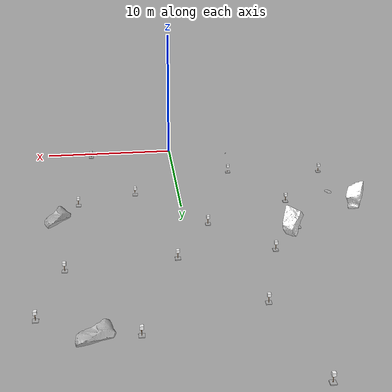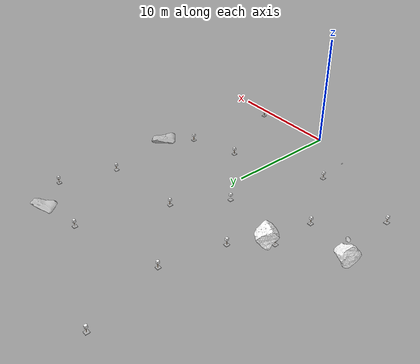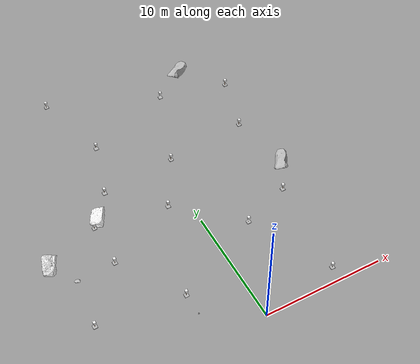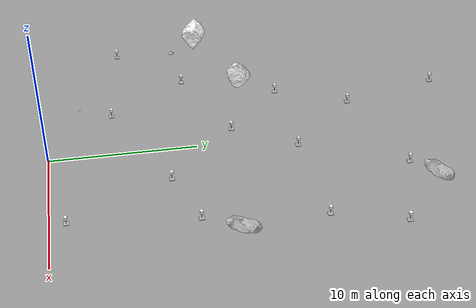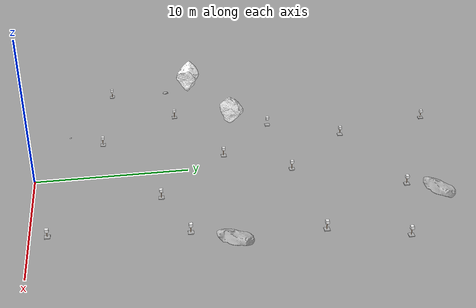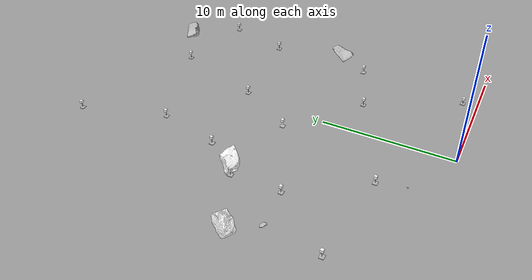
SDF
<sdf version="1.7">
 <world name="rover_world">
  <gravity>0 0 -9.81</gravity>
  <physics name="dart_physics" type="ignored">
   <max_step_size>0.003</max_step_size>
   <real_time_update_rate>333</real_time_update_rate>
   <real_time_factor>1.0</real_time_factor>
  </physics>
  <plugin filename="ignition-gazebo-physics-system" name="ignition::gazebo::systems::Physics"/>
  <plugin filename="ignition-gazebo-user-commands-system" name="ignition::gazebo::systems::UserCommands"/>
  <plugin filename="ignition-gazebo-scene-broadcaster-system" name="ignition::gazebo::systems::SceneBroadcaster"/>
  <plugin filename="ignition-gazebo-contact-system" name="ignition::gazebo::systems::Contact"/>
  <plugin filename="ignition-gazebo-pose-publisher-system" name="ignition::gazebo::systems::PosePublisher">
   <publish_link_pose>false</publish_link_pose>
   <publish_nested_model_pose>false</publish_nested_model_pose>
   <use_pose_vector_msg>true</use_pose_vector_msg>
   <update_frequency>50</update_frequency>
  </plugin>
  <plugin filename="ignition-gazebo-sensors-system" name="ignition::gazebo::systems::Sensors">
   <render_engine>ogre2</render_engine>
  </plugin>
  <plugin filename="ignition-gazebo-imu-system" name="ignition::gazebo::systems::Imu"/>
  <plugin filename="ignition-gazebo-magnetometer-system" name="ignition::gazebo::systems::Magnetometer"/>
  <scene>
   <ambient>0.95 0.95 0.95 1</ambient>
   <background>0.70 0.70 0.70 1</background>
   <shadows>false</shadows>
  </scene>
  <light type="directional" name="sun">
   <cast_shadows>false</cast_shadows>
   <pose>0 0 30 0 0 0</pose>
   <diffuse>0.9 0.85 0.8 1</diffuse>
   <specular>0.2 0.2 0.2 1</specular>
   <direction>-0.3 0.3 -0.9</direction>
  </light>
  <include>
   <name>Rock_1</name>
   <pose>-4.4550 2.2485 0.6012 0.0000 0.0000 1.2871</pose>
   <uri>model://rock_5</uri>
  </include>
  <include>
   <name>Rock_3</name>
   <pose>-12.7886 11.4865 0.8108 0.0000 0.0000 -1.9916</pose>
   <uri>model://rock_1</uri>
  </include>
  <include>
   <name>Rock_5</name>
   <pose>8.6583 11.9739 0.3344 0.0000 0.0000 -2.0026</pose>
   <uri>model://rock_4</uri>
  </include>
  <include>
   <name>Rock_6</name>
   <pose>-6.7548 13.5827 0.4504 0.0000 0.0000 1.0725</pose>
   <uri>model://rock_1</uri>
  </include>
  <include>
   <name>Rock_8</name>
   <pose>-10.9835 9.3268 0.3040 0.0000 0.0000 2.3352</pose>
   <uri>model://rock_8</uri>
  </include>
  <include>
   <name>Rock_12</name>
   <pose>5.9745 25.2183 0.7205 0.0000 0.0000 -2.4954</pose>
   <uri>model://rock_4</uri>
  </include>
  <model name="ArUco_51">
   <static>true</static>
   <pose>3.1830 8.0120 0.0848 0.0000 0.0000 0.0000</pose>
   <include><uri>model://aruco_1</uri></include>
  </model>
  <model name="ArUco_52">
   <static>true</static>
   <pose>7.2690 9.4820 0.1802 0.0000 0.0000 0.0000</pose>
   <include><uri>model://aruco_2</uri></include>
  </model>
  <model name="ArUco_53">
   <static>true</static>
   <pose>7.8780 17.5830 -0.0338 0.0000 0.0000 0.0000</pose>
   <include><uri>model://aruco_3</uri></include>
  </model>
  <model name="ArUco_54">
   <static>true</static>
   <pose>9.2250 22.3890 -0.0094 0.0000 0.0000 0.0000</pose>
   <include><uri>model://aruco_4</uri></include>
  </model>
  <model name="ArUco_55">
   <static>true</static>
   <pose>3.5180 23.9900 -0.2141 0.0000 0.0000 0.0000</pose>
   <include><uri>model://aruco_5</uri></include>
  </model>
  <model name="ArUco_56">
   <static>true</static>
   <pose>0.8820 16.8700 -0.0291 0.0000 0.0000 0.0000</pose>
   <include><uri>model://aruco_6</uri></include>
  </model>
  <model name="ArUco_57">
   <static>true</static>
   <pose>-3.9440 21.4150 -0.4839 0.0000 0.0000 0.0000</pose>
   <include><uri>model://aruco_7</uri></include>
  </model>
  <model name="ArUco_58">
   <static>true</static>
   <pose>-5.4910 16.3340 -0.1219 0.0000 0.0000 0.0000</pose>
   <include><uri>model://aruco_8</uri></include>
  </model>
  <model name="ArUco_59">
   <static>true</static>
   <pose>-7.6950 13.5280 -0.1686 0.0000 0.0000 0.0000</pose>
   <include><uri>model://aruco_9</uri></include>
  </model>
  <model name="ArUco_60">
   <static>true</static>
   <pose>-1.6100 12.6020 -0.0891 0.0000 0.0000 0.0000</pose>
   <include><uri>model://aruco_10</uri></include>
  </model>
  <model name="ArUco_61">
   <static>true</static>
   <pose>-7.7150 9.7210 -0.1552 0.0000 0.0000 0.0000</pose>
   <include><uri>model://aruco_11</uri></include>
  </model>
  <model name="ArUco_62">
   <static>true</static>
   <pose>-4.3110 4.4420 -0.0941 0.0000 0.0000 0.0000</pose>
   <include><uri>model://aruco_12</uri></include>
  </model>
  <model name="ArUco_63">
   <static>true</static>
   <pose>-5.7200 28.1180 -0.5995 0.0000 0.0000 0.0000</pose>
   <include><uri>model://aruco_13</uri></include>
  </model>
  <model name="ArUco_64">
   <static>true</static>
   <pose>-11.4380 5.2300 -0.0011 0.0000 0.0000 0.0000</pose>
   <include><uri>model://aruco_14</uri></include>
  </model>
  <model name="ArUco_65">
   <static>true</static>
   <pose>6.4830 1.1020 0.2112 0.0000 0.0000 0.0000</pose>
   <include><uri>model://aruco_15</uri></include>
  </model>
 </world>
</sdf>

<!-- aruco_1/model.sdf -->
<sdf version="1.6">
  <model name="aruco_1">
    <static>true</static>
    <link name="link">
      <!-- Concrete Base -->
      <visual name="base_visual">
        <pose>0 0 0.025 0 0 0</pose>
        <geometry>
          <box>
            <size>0.35 0.35 0.05</size>
          </box>
        </geometry>
        <material>
          <ambient>0.7 0.7 0.7 1</ambient>
          <diffuse>0.7 0.7 0.7 1</diffuse>
        </material>
      </visual>
      <collision name="base_collision">
        <pose>0 0 0.025 0 0 0</pose>
        <geometry>
          <box>
            <size>0.35 0.35 0.05</size>
          </box>
        </geometry>
      </collision>

      <!-- Wooden Pole -->
      <visual name="pole_visual">
        <pose>0 0 0.26 0 0 0</pose>
        <geometry>
          <cylinder>
            <radius>0.015</radius>
            <length>0.42</length>
          </cylinder>
        </geometry>
        <material>
          <ambient>0.6 0.4 0.2 1</ambient>
          <diffuse>0.6 0.4 0.2 1</diffuse>
        </material>
      </visual>
      <collision name="pole_collision">
        <pose>0 0 0.26 0 0 0</pose>
        <geometry>
          <cylinder>
            <radius>0.015</radius>
            <length>0.42</length>
          </cylinder>
        </geometry>
      </collision>

      <!-- Head Box with ArUco Texture -->
      <visual name="head_visual">
        <pose>0 0 0.575 0 0 0</pose>
        <geometry>
          <box>
            <size>0.21 0.21 0.21</size>
          </box>
        </geometry>
        <material>
          <ambient>1 1 1 1</ambient>
          <diffuse>1 1 1 1</diffuse>
          <pbr>
            <metal>
              <albedo_map>model://aruco_1/materials/textures/marker_1.png</albedo_map>
            </metal>
          </pbr>
        </material>
      </visual>
      <collision name="head_collision">
        <pose>0 0 0.575 0 0 0</pose>
        <geometry>
          <box>
            <size>0.21 0.21 0.21</size>
          </box>
        </geometry>
      </collision>
    </link>
  </model>
</sdf>

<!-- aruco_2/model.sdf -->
<sdf version="1.6">
  <model name="aruco_2">
    <static>true</static>
    <link name="link">
      <!-- Concrete Base -->
      <visual name="base_visual">
        <pose>0 0 0.025 0 0 0</pose>
        <geometry>
          <box>
            <size>0.35 0.35 0.05</size>
          </box>
        </geometry>
        <material>
          <ambient>0.7 0.7 0.7 1</ambient>
          <diffuse>0.7 0.7 0.7 1</diffuse>
        </material>
      </visual>
      <collision name="base_collision">
        <pose>0 0 0.025 0 0 0</pose>
        <geometry>
          <box>
            <size>0.35 0.35 0.05</size>
          </box>
        </geometry>
      </collision>

      <!-- Wooden Pole -->
      <visual name="pole_visual">
        <pose>0 0 0.26 0 0 0</pose>
        <geometry>
          <cylinder>
            <radius>0.015</radius>
            <length>0.42</length>
          </cylinder>
        </geometry>
        <material>
          <ambient>0.6 0.4 0.2 1</ambient>
          <diffuse>0.6 0.4 0.2 1</diffuse>
        </material>
      </visual>
      <collision name="pole_collision">
        <pose>0 0 0.26 0 0 0</pose>
        <geometry>
          <cylinder>
            <radius>0.015</radius>
            <length>0.42</length>
          </cylinder>
        </geometry>
      </collision>

      <!-- Head Box with ArUco Texture -->
      <visual name="head_visual">
        <pose>0 0 0.575 0 0 0</pose>
        <geometry>
          <box>
            <size>0.21 0.21 0.21</size>
          </box>
        </geometry>
        <material>
          <ambient>1 1 1 1</ambient>
          <diffuse>1 1 1 1</diffuse>
          <pbr>
            <metal>
              <albedo_map>model://aruco_2/materials/textures/marker_2.png</albedo_map>
            </metal>
          </pbr>
        </material>
      </visual>
      <collision name="head_collision">
        <pose>0 0 0.575 0 0 0</pose>
        <geometry>
          <box>
            <size>0.21 0.21 0.21</size>
          </box>
        </geometry>
      </collision>
    </link>
  </model>
</sdf>

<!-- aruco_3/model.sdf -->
<sdf version="1.6">
  <model name="aruco_3">
    <static>true</static>
    <link name="link">
      <!-- Concrete Base -->
      <visual name="base_visual">
        <pose>0 0 0.025 0 0 0</pose>
        <geometry>
          <box>
            <size>0.35 0.35 0.05</size>
          </box>
        </geometry>
        <material>
          <ambient>0.7 0.7 0.7 1</ambient>
          <diffuse>0.7 0.7 0.7 1</diffuse>
        </material>
      </visual>
      <collision name="base_collision">
        <pose>0 0 0.025 0 0 0</pose>
        <geometry>
          <box>
            <size>0.35 0.35 0.05</size>
          </box>
        </geometry>
      </collision>

      <!-- Wooden Pole -->
      <visual name="pole_visual">
        <pose>0 0 0.26 0 0 0</pose>
        <geometry>
          <cylinder>
            <radius>0.015</radius>
            <length>0.42</length>
          </cylinder>
        </geometry>
        <material>
          <ambient>0.6 0.4 0.2 1</ambient>
          <diffuse>0.6 0.4 0.2 1</diffuse>
        </material>
      </visual>
      <collision name="pole_collision">
        <pose>0 0 0.26 0 0 0</pose>
        <geometry>
          <cylinder>
            <radius>0.015</radius>
            <length>0.42</length>
          </cylinder>
        </geometry>
      </collision>

      <!-- Head Box with ArUco Texture -->
      <visual name="head_visual">
        <pose>0 0 0.575 0 0 0</pose>
        <geometry>
          <box>
            <size>0.21 0.21 0.21</size>
          </box>
        </geometry>
        <material>
          <ambient>1 1 1 1</ambient>
          <diffuse>1 1 1 1</diffuse>
          <pbr>
            <metal>
              <albedo_map>model://aruco_3/materials/textures/marker_3.png</albedo_map>
            </metal>
          </pbr>
        </material>
      </visual>
      <collision name="head_collision">
        <pose>0 0 0.575 0 0 0</pose>
        <geometry>
          <box>
            <size>0.21 0.21 0.21</size>
          </box>
        </geometry>
      </collision>
    </link>
  </model>
</sdf>

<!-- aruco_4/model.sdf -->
<sdf version="1.6">
  <model name="aruco_4">
    <static>true</static>
    <link name="link">
      <!-- Concrete Base -->
      <visual name="base_visual">
        <pose>0 0 0.025 0 0 0</pose>
        <geometry>
          <box>
            <size>0.35 0.35 0.05</size>
          </box>
        </geometry>
        <material>
          <ambient>0.7 0.7 0.7 1</ambient>
          <diffuse>0.7 0.7 0.7 1</diffuse>
        </material>
      </visual>
      <collision name="base_collision">
        <pose>0 0 0.025 0 0 0</pose>
        <geometry>
          <box>
            <size>0.35 0.35 0.05</size>
          </box>
        </geometry>
      </collision>

      <!-- Wooden Pole -->
      <visual name="pole_visual">
        <pose>0 0 0.26 0 0 0</pose>
        <geometry>
          <cylinder>
            <radius>0.015</radius>
            <length>0.42</length>
          </cylinder>
        </geometry>
        <material>
          <ambient>0.6 0.4 0.2 1</ambient>
          <diffuse>0.6 0.4 0.2 1</diffuse>
        </material>
      </visual>
      <collision name="pole_collision">
        <pose>0 0 0.26 0 0 0</pose>
        <geometry>
          <cylinder>
            <radius>0.015</radius>
            <length>0.42</length>
          </cylinder>
        </geometry>
      </collision>

      <!-- Head Box with ArUco Texture -->
      <visual name="head_visual">
        <pose>0 0 0.575 0 0 0</pose>
        <geometry>
          <box>
            <size>0.21 0.21 0.21</size>
          </box>
        </geometry>
        <material>
          <ambient>1 1 1 1</ambient>
          <diffuse>1 1 1 1</diffuse>
          <pbr>
            <metal>
              <albedo_map>model://aruco_4/materials/textures/marker_4.png</albedo_map>
            </metal>
          </pbr>
        </material>
      </visual>
      <collision name="head_collision">
        <pose>0 0 0.575 0 0 0</pose>
        <geometry>
          <box>
            <size>0.21 0.21 0.21</size>
          </box>
        </geometry>
      </collision>
    </link>
  </model>
</sdf>

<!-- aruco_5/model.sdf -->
<sdf version="1.6">
  <model name="aruco_5">
    <static>true</static>
    <link name="link">
      <!-- Concrete Base -->
      <visual name="base_visual">
        <pose>0 0 0.025 0 0 0</pose>
        <geometry>
          <box>
            <size>0.35 0.35 0.05</size>
          </box>
        </geometry>
        <material>
          <ambient>0.7 0.7 0.7 1</ambient>
          <diffuse>0.7 0.7 0.7 1</diffuse>
        </material>
      </visual>
      <collision name="base_collision">
        <pose>0 0 0.025 0 0 0</pose>
        <geometry>
          <box>
            <size>0.35 0.35 0.05</size>
          </box>
        </geometry>
      </collision>

      <!-- Wooden Pole -->
      <visual name="pole_visual">
        <pose>0 0 0.26 0 0 0</pose>
        <geometry>
          <cylinder>
            <radius>0.015</radius>
            <length>0.42</length>
          </cylinder>
        </geometry>
        <material>
          <ambient>0.6 0.4 0.2 1</ambient>
          <diffuse>0.6 0.4 0.2 1</diffuse>
        </material>
      </visual>
      <collision name="pole_collision">
        <pose>0 0 0.26 0 0 0</pose>
        <geometry>
          <cylinder>
            <radius>0.015</radius>
            <length>0.42</length>
          </cylinder>
        </geometry>
      </collision>

      <!-- Head Box with ArUco Texture -->
      <visual name="head_visual">
        <pose>0 0 0.575 0 0 0</pose>
        <geometry>
          <box>
            <size>0.21 0.21 0.21</size>
          </box>
        </geometry>
        <material>
          <ambient>1 1 1 1</ambient>
          <diffuse>1 1 1 1</diffuse>
          <pbr>
            <metal>
              <albedo_map>model://aruco_5/materials/textures/marker_5.png</albedo_map>
            </metal>
          </pbr>
        </material>
      </visual>
      <collision name="head_collision">
        <pose>0 0 0.575 0 0 0</pose>
        <geometry>
          <box>
            <size>0.21 0.21 0.21</size>
          </box>
        </geometry>
      </collision>
    </link>
  </model>
</sdf>

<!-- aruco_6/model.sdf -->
<sdf version="1.6">
  <model name="aruco_6">
    <static>true</static>
    <link name="link">
      <!-- Concrete Base -->
      <visual name="base_visual">
        <pose>0 0 0.025 0 0 0</pose>
        <geometry>
          <box>
            <size>0.35 0.35 0.05</size>
          </box>
        </geometry>
        <material>
          <ambient>0.7 0.7 0.7 1</ambient>
          <diffuse>0.7 0.7 0.7 1</diffuse>
        </material>
      </visual>
      <collision name="base_collision">
        <pose>0 0 0.025 0 0 0</pose>
        <geometry>
          <box>
            <size>0.35 0.35 0.05</size>
          </box>
        </geometry>
      </collision>

      <!-- Wooden Pole -->
      <visual name="pole_visual">
        <pose>0 0 0.26 0 0 0</pose>
        <geometry>
          <cylinder>
            <radius>0.015</radius>
            <length>0.42</length>
          </cylinder>
        </geometry>
        <material>
          <ambient>0.6 0.4 0.2 1</ambient>
          <diffuse>0.6 0.4 0.2 1</diffuse>
        </material>
      </visual>
      <collision name="pole_collision">
        <pose>0 0 0.26 0 0 0</pose>
        <geometry>
          <cylinder>
            <radius>0.015</radius>
            <length>0.42</length>
          </cylinder>
        </geometry>
      </collision>

      <!-- Head Box with ArUco Texture -->
      <visual name="head_visual">
        <pose>0 0 0.575 0 0 0</pose>
        <geometry>
          <box>
            <size>0.21 0.21 0.21</size>
          </box>
        </geometry>
        <material>
          <ambient>1 1 1 1</ambient>
          <diffuse>1 1 1 1</diffuse>
          <pbr>
            <metal>
              <albedo_map>model://aruco_6/materials/textures/marker_6.png</albedo_map>
            </metal>
          </pbr>
        </material>
      </visual>
      <collision name="head_collision">
        <pose>0 0 0.575 0 0 0</pose>
        <geometry>
          <box>
            <size>0.21 0.21 0.21</size>
          </box>
        </geometry>
      </collision>
    </link>
  </model>
</sdf>

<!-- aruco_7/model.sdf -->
<sdf version="1.6">
  <model name="aruco_7">
    <static>true</static>
    <link name="link">
      <!-- Concrete Base -->
      <visual name="base_visual">
        <pose>0 0 0.025 0 0 0</pose>
        <geometry>
          <box>
            <size>0.35 0.35 0.05</size>
          </box>
        </geometry>
        <material>
          <ambient>0.7 0.7 0.7 1</ambient>
          <diffuse>0.7 0.7 0.7 1</diffuse>
        </material>
      </visual>
      <collision name="base_collision">
        <pose>0 0 0.025 0 0 0</pose>
        <geometry>
          <box>
            <size>0.35 0.35 0.05</size>
          </box>
        </geometry>
      </collision>

      <!-- Wooden Pole -->
      <visual name="pole_visual">
        <pose>0 0 0.26 0 0 0</pose>
        <geometry>
          <cylinder>
            <radius>0.015</radius>
            <length>0.42</length>
          </cylinder>
        </geometry>
        <material>
          <ambient>0.6 0.4 0.2 1</ambient>
          <diffuse>0.6 0.4 0.2 1</diffuse>
        </material>
      </visual>
      <collision name="pole_collision">
        <pose>0 0 0.26 0 0 0</pose>
        <geometry>
          <cylinder>
            <radius>0.015</radius>
            <length>0.42</length>
          </cylinder>
        </geometry>
      </collision>

      <!-- Head Box with ArUco Texture -->
      <visual name="head_visual">
        <pose>0 0 0.575 0 0 0</pose>
        <geometry>
          <box>
            <size>0.21 0.21 0.21</size>
          </box>
        </geometry>
        <material>
          <ambient>1 1 1 1</ambient>
          <diffuse>1 1 1 1</diffuse>
          <pbr>
            <metal>
              <albedo_map>model://aruco_7/materials/textures/marker_7.png</albedo_map>
            </metal>
          </pbr>
        </material>
      </visual>
      <collision name="head_collision">
        <pose>0 0 0.575 0 0 0</pose>
        <geometry>
          <box>
            <size>0.21 0.21 0.21</size>
          </box>
        </geometry>
      </collision>
    </link>
  </model>
</sdf>

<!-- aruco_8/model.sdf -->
<sdf version="1.6">
  <model name="aruco_8">
    <static>true</static>
    <link name="link">
      <!-- Concrete Base -->
      <visual name="base_visual">
        <pose>0 0 0.025 0 0 0</pose>
        <geometry>
          <box>
            <size>0.35 0.35 0.05</size>
          </box>
        </geometry>
        <material>
          <ambient>0.7 0.7 0.7 1</ambient>
          <diffuse>0.7 0.7 0.7 1</diffuse>
        </material>
      </visual>
      <collision name="base_collision">
        <pose>0 0 0.025 0 0 0</pose>
        <geometry>
          <box>
            <size>0.35 0.35 0.05</size>
          </box>
        </geometry>
      </collision>

      <!-- Wooden Pole -->
      <visual name="pole_visual">
        <pose>0 0 0.26 0 0 0</pose>
        <geometry>
          <cylinder>
            <radius>0.015</radius>
            <length>0.42</length>
          </cylinder>
        </geometry>
        <material>
          <ambient>0.6 0.4 0.2 1</ambient>
          <diffuse>0.6 0.4 0.2 1</diffuse>
        </material>
      </visual>
      <collision name="pole_collision">
        <pose>0 0 0.26 0 0 0</pose>
        <geometry>
          <cylinder>
            <radius>0.015</radius>
            <length>0.42</length>
          </cylinder>
        </geometry>
      </collision>

      <!-- Head Box with ArUco Texture -->
      <visual name="head_visual">
        <pose>0 0 0.575 0 0 0</pose>
        <geometry>
          <box>
            <size>0.21 0.21 0.21</size>
          </box>
        </geometry>
        <material>
          <ambient>1 1 1 1</ambient>
          <diffuse>1 1 1 1</diffuse>
          <pbr>
            <metal>
              <albedo_map>model://aruco_8/materials/textures/marker_8.png</albedo_map>
            </metal>
          </pbr>
        </material>
      </visual>
      <collision name="head_collision">
        <pose>0 0 0.575 0 0 0</pose>
        <geometry>
          <box>
            <size>0.21 0.21 0.21</size>
          </box>
        </geometry>
      </collision>
    </link>
  </model>
</sdf>

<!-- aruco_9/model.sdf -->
<sdf version="1.6">
  <model name="aruco_9">
    <static>true</static>
    <link name="link">
      <visual name="base_visual">
        <pose>0 0 0.025 0 0 0</pose>
        <geometry>
          <box>
            <size>0.35 0.35 0.05</size>
          </box>
        </geometry>
        <material>
          <ambient>0.7 0.7 0.7 1</ambient>
          <diffuse>0.7 0.7 0.7 1</diffuse>
        </material>
      </visual>
      <collision name="base_collision">
        <pose>0 0 0.025 0 0 0</pose>
        <geometry>
          <box>
            <size>0.35 0.35 0.05</size>
          </box>
        </geometry>
      </collision>
      <visual name="pole_visual">
        <pose>0 0 0.228500 0 0 0</pose>
        <geometry>
          <cylinder>
            <radius>0.015</radius>
            <length>0.357000</length>
          </cylinder>
        </geometry>
        <material>
          <ambient>0.6 0.4 0.2 1</ambient>
          <diffuse>0.6 0.4 0.2 1</diffuse>
        </material>
      </visual>
      <collision name="pole_collision">
        <pose>0 0 0.228500 0 0 0</pose>
        <geometry>
          <cylinder>
            <radius>0.015</radius>
            <length>0.357000</length>
          </cylinder>
        </geometry>
      </collision>
      <visual name="head_visual">
        <pose>0 0 0.496250 0 0 0</pose>
        <geometry>
          <box>
            <size>0.21 0.21 0.21</size>
          </box>
        </geometry>
        <material>
          <ambient>1 1 1 1</ambient>
          <diffuse>1 1 1 1</diffuse>
          <pbr>
            <metal>
              <albedo_map>model://aruco_9/materials/textures/marker_9.png</albedo_map>
            </metal>
          </pbr>
        </material>
      </visual>
      <collision name="head_collision">
        <pose>0 0 0.496250 0 0 0</pose>
        <geometry>
          <box>
            <size>0.21 0.21 0.21</size>
          </box>
        </geometry>
      </collision>
    </link>
  </model>
</sdf>

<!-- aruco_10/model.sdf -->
<sdf version="1.6">
  <model name="aruco_10">
    <static>true</static>
    <link name="link">
      <!-- Concrete Base -->
      <visual name="base_visual">
        <pose>0 0 0.025 0 0 0</pose>
        <geometry>
          <box>
            <size>0.35 0.35 0.05</size>
          </box>
        </geometry>
        <material>
          <ambient>0.7 0.7 0.7 1</ambient>
          <diffuse>0.7 0.7 0.7 1</diffuse>
        </material>
      </visual>
      <collision name="base_collision">
        <pose>0 0 0.025 0 0 0</pose>
        <geometry>
          <box>
            <size>0.35 0.35 0.05</size>
          </box>
        </geometry>
      </collision>

      <!-- Wooden Pole -->
      <visual name="pole_visual">
        <pose>0 0 0.26 0 0 0</pose>
        <geometry>
          <cylinder>
            <radius>0.015</radius>
            <length>0.42</length>
          </cylinder>
        </geometry>
        <material>
          <ambient>0.6 0.4 0.2 1</ambient>
          <diffuse>0.6 0.4 0.2 1</diffuse>
        </material>
      </visual>
      <collision name="pole_collision">
        <pose>0 0 0.26 0 0 0</pose>
        <geometry>
          <cylinder>
            <radius>0.015</radius>
            <length>0.42</length>
          </cylinder>
        </geometry>
      </collision>

      <!-- Head Box with ArUco Texture -->
      <visual name="head_visual">
        <pose>0 0 0.575 0 0 0</pose>
        <geometry>
          <box>
            <size>0.21 0.21 0.21</size>
          </box>
        </geometry>
        <material>
          <ambient>1 1 1 1</ambient>
          <diffuse>1 1 1 1</diffuse>
          <pbr>
            <metal>
              <albedo_map>model://aruco_10/materials/textures/marker_10.png</albedo_map>
            </metal>
          </pbr>
        </material>
      </visual>
      <collision name="head_collision">
        <pose>0 0 0.575 0 0 0</pose>
        <geometry>
          <box>
            <size>0.21 0.21 0.21</size>
          </box>
        </geometry>
      </collision>
    </link>
  </model>
</sdf>

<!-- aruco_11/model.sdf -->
<sdf version="1.6">
  <model name="aruco_11">
    <static>true</static>
    <link name="link">
      <!-- Concrete Base -->
      <visual name="base_visual">
        <pose>0 0 0.025 0 0 0</pose>
        <geometry>
          <box>
            <size>0.35 0.35 0.05</size>
          </box>
        </geometry>
        <material>
          <ambient>0.7 0.7 0.7 1</ambient>
          <diffuse>0.7 0.7 0.7 1</diffuse>
        </material>
      </visual>
      <collision name="base_collision">
        <pose>0 0 0.025 0 0 0</pose>
        <geometry>
          <box>
            <size>0.35 0.35 0.05</size>
          </box>
        </geometry>
      </collision>

      <!-- Wooden Pole -->
      <visual name="pole_visual">
        <pose>0 0 0.26 0 0 0</pose>
        <geometry>
          <cylinder>
            <radius>0.015</radius>
            <length>0.42</length>
          </cylinder>
        </geometry>
        <material>
          <ambient>0.6 0.4 0.2 1</ambient>
          <diffuse>0.6 0.4 0.2 1</diffuse>
        </material>
      </visual>
      <collision name="pole_collision">
        <pose>0 0 0.26 0 0 0</pose>
        <geometry>
          <cylinder>
            <radius>0.015</radius>
            <length>0.42</length>
          </cylinder>
        </geometry>
      </collision>

      <!-- Head Box with ArUco Texture -->
      <visual name="head_visual">
        <pose>0 0 0.575 0 0 0</pose>
        <geometry>
          <box>
            <size>0.21 0.21 0.21</size>
          </box>
        </geometry>
        <material>
          <ambient>1 1 1 1</ambient>
          <diffuse>1 1 1 1</diffuse>
          <pbr>
            <metal>
              <albedo_map>model://aruco_11/materials/textures/marker_11.png</albedo_map>
            </metal>
          </pbr>
        </material>
      </visual>
      <collision name="head_collision">
        <pose>0 0 0.575 0 0 0</pose>
        <geometry>
          <box>
            <size>0.21 0.21 0.21</size>
          </box>
        </geometry>
      </collision>
    </link>
  </model>
</sdf>

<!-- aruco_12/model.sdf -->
<sdf version="1.6">
  <model name="aruco_12">
    <static>true</static>
    <link name="link">
      <!-- Concrete Base -->
      <visual name="base_visual">
        <pose>0 0 0.025 0 0 0</pose>
        <geometry>
          <box>
            <size>0.35 0.35 0.05</size>
          </box>
        </geometry>
        <material>
          <ambient>0.7 0.7 0.7 1</ambient>
          <diffuse>0.7 0.7 0.7 1</diffuse>
        </material>
      </visual>
      <collision name="base_collision">
        <pose>0 0 0.025 0 0 0</pose>
        <geometry>
          <box>
            <size>0.35 0.35 0.05</size>
          </box>
        </geometry>
      </collision>

      <!-- Wooden Pole -->
      <visual name="pole_visual">
        <pose>0 0 0.26 0 0 0</pose>
        <geometry>
          <cylinder>
            <radius>0.015</radius>
            <length>0.42</length>
          </cylinder>
        </geometry>
        <material>
          <ambient>0.6 0.4 0.2 1</ambient>
          <diffuse>0.6 0.4 0.2 1</diffuse>
        </material>
      </visual>
      <collision name="pole_collision">
        <pose>0 0 0.26 0 0 0</pose>
        <geometry>
          <cylinder>
            <radius>0.015</radius>
            <length>0.42</length>
          </cylinder>
        </geometry>
      </collision>

      <!-- Head Box with ArUco Texture -->
      <visual name="head_visual">
        <pose>0 0 0.575 0 0 0</pose>
        <geometry>
          <box>
            <size>0.21 0.21 0.21</size>
          </box>
        </geometry>
        <material>
          <ambient>1 1 1 1</ambient>
          <diffuse>1 1 1 1</diffuse>
          <pbr>
            <metal>
              <albedo_map>model://aruco_12/materials/textures/marker_12.png</albedo_map>
            </metal>
          </pbr>
        </material>
      </visual>
      <collision name="head_collision">
        <pose>0 0 0.575 0 0 0</pose>
        <geometry>
          <box>
            <size>0.21 0.21 0.21</size>
          </box>
        </geometry>
      </collision>
    </link>
  </model>
</sdf>

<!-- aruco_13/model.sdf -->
<sdf version="1.6">
  <model name="aruco_13">
    <static>true</static>
    <link name="link">
      <!-- Concrete Base -->
      <visual name="base_visual">
        <pose>0 0 0.025 0 0 0</pose>
        <geometry>
          <box>
            <size>0.35 0.35 0.05</size>
          </box>
        </geometry>
        <material>
          <ambient>0.7 0.7 0.7 1</ambient>
          <diffuse>0.7 0.7 0.7 1</diffuse>
        </material>
      </visual>
      <collision name="base_collision">
        <pose>0 0 0.025 0 0 0</pose>
        <geometry>
          <box>
            <size>0.35 0.35 0.05</size>
          </box>
        </geometry>
      </collision>

      <!-- Wooden Pole -->
      <visual name="pole_visual">
        <pose>0 0 0.26 0 0 0</pose>
        <geometry>
          <cylinder>
            <radius>0.015</radius>
            <length>0.42</length>
          </cylinder>
        </geometry>
        <material>
          <ambient>0.6 0.4 0.2 1</ambient>
          <diffuse>0.6 0.4 0.2 1</diffuse>
        </material>
      </visual>
      <collision name="pole_collision">
        <pose>0 0 0.26 0 0 0</pose>
        <geometry>
          <cylinder>
            <radius>0.015</radius>
            <length>0.42</length>
          </cylinder>
        </geometry>
      </collision>

      <!-- Head Box with ArUco Texture -->
      <visual name="head_visual">
        <pose>0 0 0.575 0 0 0</pose>
        <geometry>
          <box>
            <size>0.21 0.21 0.21</size>
          </box>
        </geometry>
        <material>
          <ambient>1 1 1 1</ambient>
          <diffuse>1 1 1 1</diffuse>
          <pbr>
            <metal>
              <albedo_map>model://aruco_13/materials/textures/marker_13.png</albedo_map>
            </metal>
          </pbr>
        </material>
      </visual>
      <collision name="head_collision">
        <pose>0 0 0.575 0 0 0</pose>
        <geometry>
          <box>
            <size>0.21 0.21 0.21</size>
          </box>
        </geometry>
      </collision>
    </link>
  </model>
</sdf>

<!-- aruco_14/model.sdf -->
<sdf version="1.6">
  <model name="aruco_14">
    <static>true</static>
    <link name="link">
      <!-- Concrete Base -->
      <visual name="base_visual">
        <pose>0 0 0.025 0 0 0</pose>
        <geometry>
          <box>
            <size>0.35 0.35 0.05</size>
          </box>
        </geometry>
        <material>
          <ambient>0.7 0.7 0.7 1</ambient>
          <diffuse>0.7 0.7 0.7 1</diffuse>
        </material>
      </visual>
      <collision name="base_collision">
        <pose>0 0 0.025 0 0 0</pose>
        <geometry>
          <box>
            <size>0.35 0.35 0.05</size>
          </box>
        </geometry>
      </collision>

      <!-- Wooden Pole -->
      <visual name="pole_visual">
        <pose>0 0 0.26 0 0 0</pose>
        <geometry>
          <cylinder>
            <radius>0.015</radius>
            <length>0.42</length>
          </cylinder>
        </geometry>
        <material>
          <ambient>0.6 0.4 0.2 1</ambient>
          <diffuse>0.6 0.4 0.2 1</diffuse>
        </material>
      </visual>
      <collision name="pole_collision">
        <pose>0 0 0.26 0 0 0</pose>
        <geometry>
          <cylinder>
            <radius>0.015</radius>
            <length>0.42</length>
          </cylinder>
        </geometry>
      </collision>

      <!-- Head Box with ArUco Texture -->
      <visual name="head_visual">
        <pose>0 0 0.575 0 0 0</pose>
        <geometry>
          <box>
            <size>0.21 0.21 0.21</size>
          </box>
        </geometry>
        <material>
          <ambient>1 1 1 1</ambient>
          <diffuse>1 1 1 1</diffuse>
          <pbr>
            <metal>
              <albedo_map>model://aruco_14/materials/textures/marker_14.png</albedo_map>
            </metal>
          </pbr>
        </material>
      </visual>
      <collision name="head_collision">
        <pose>0 0 0.575 0 0 0</pose>
        <geometry>
          <box>
            <size>0.21 0.21 0.21</size>
          </box>
        </geometry>
      </collision>
    </link>
  </model>
</sdf>

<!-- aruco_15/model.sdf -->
<sdf version="1.6">
  <model name="aruco_15">
    <static>true</static>
    <link name="link">
      <visual name="base_visual">
        <pose>0 0 0.025 0 0 0</pose>
        <geometry>
          <box>
            <size>0.35 0.35 0.05</size>
          </box>
        </geometry>
        <material>
          <ambient>0.7 0.7 0.7 1</ambient>
          <diffuse>0.7 0.7 0.7 1</diffuse>
        </material>
      </visual>
      <collision name="base_collision">
        <pose>0 0 0.025 0 0 0</pose>
        <geometry>
          <box>
            <size>0.35 0.35 0.05</size>
          </box>
        </geometry>
      </collision>
      <visual name="pole_visual">
        <pose>0 0 0.228500 0 0 0</pose>
        <geometry>
          <cylinder>
            <radius>0.015</radius>
            <length>0.357000</length>
          </cylinder>
        </geometry>
        <material>
          <ambient>0.6 0.4 0.2 1</ambient>
          <diffuse>0.6 0.4 0.2 1</diffuse>
        </material>
      </visual>
      <collision name="pole_collision">
        <pose>0 0 0.228500 0 0 0</pose>
        <geometry>
          <cylinder>
            <radius>0.015</radius>
            <length>0.357000</length>
          </cylinder>
        </geometry>
      </collision>
      <visual name="head_visual">
        <pose>0 0 0.496250 0 0 0</pose>
        <geometry>
          <box>
            <size>0.21 0.21 0.21</size>
          </box>
        </geometry>
        <material>
          <ambient>1 1 1 1</ambient>
          <diffuse>1 1 1 1</diffuse>
          <pbr>
            <metal>
              <albedo_map>model://aruco_15/materials/textures/marker_15.png</albedo_map>
            </metal>
          </pbr>
        </material>
      </visual>
      <collision name="head_collision">
        <pose>0 0 0.496250 0 0 0</pose>
        <geometry>
          <box>
            <size>0.21 0.21 0.21</size>
          </box>
        </geometry>
      </collision>
    </link>
  </model>
</sdf>

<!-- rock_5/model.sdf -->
<sdf version="1.9">

  <model name="rock_5">

    <static>true</static>

    <link name="rock_link">

      <visual name="visual">
        <geometry>
          <mesh>
            <uri>meshes/rock_5.glb</uri>
          </mesh>
        </geometry>
      </visual>

      <collision name="collision">
        <geometry>
          <mesh>
            <uri>meshes/rock_5.stl</uri>
          </mesh>
        </geometry>
      </collision>

    </link>

  </model>

</sdf>

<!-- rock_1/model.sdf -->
<sdf version="1.9">
  <model name="rock_1">
    <static>true</static>
    <link name="rock_link">

      <!-- Visual -->
      <visual name="visual">
        <geometry>
          <mesh>
            <uri>model://rock_1/meshes/rock_1.obj</uri>
          </mesh>
        </geometry>
        <material>
          <ambient>1 1 1 1</ambient>
          <diffuse>1 1 1 1</diffuse>
          <pbr>
            <metal>
              <albedo_map>model://rock_1/meshes/rock_1_diffuse.jpg</albedo_map>
            </metal>
          </pbr>
        </material>
      </visual>

      <!-- Collision -->
      <collision name="collision">
        <geometry>
          <mesh>
            <uri>model://rock_1/meshes/rock_1.obj</uri>
          </mesh>
        </geometry>
      </collision>

    </link>
  </model>
</sdf>

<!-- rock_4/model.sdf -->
<sdf version="1.9">

  <model name="rock_4">

    <static>true</static>

    <link name="rock_link">

      <visual name="visual">
        <geometry>
          <mesh>
            <uri>meshes/rock_4.glb</uri>
          </mesh>
        </geometry>
      </visual>

      <collision name="collision">
        <geometry>
          <mesh>
            <uri>meshes/rock_4.stl</uri>
          </mesh>
        </geometry>
      </collision>

    </link>

  </model>

</sdf>

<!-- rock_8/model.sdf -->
<sdf version="1.9">

  <model name="rock_8">

    <static>true</static>

    <link name="rock_link">

      <visual name="visual">
        <geometry>
          <mesh>
            <uri>meshes/rock_8.glb</uri>
          </mesh>
        </geometry>
      </visual>

      <collision name="collision">
        <geometry>
          <mesh>
            <uri>meshes/rock_8.stl</uri>
          </mesh>
        </geometry>
      </collision>

    </link>

  </model>

</sdf>
